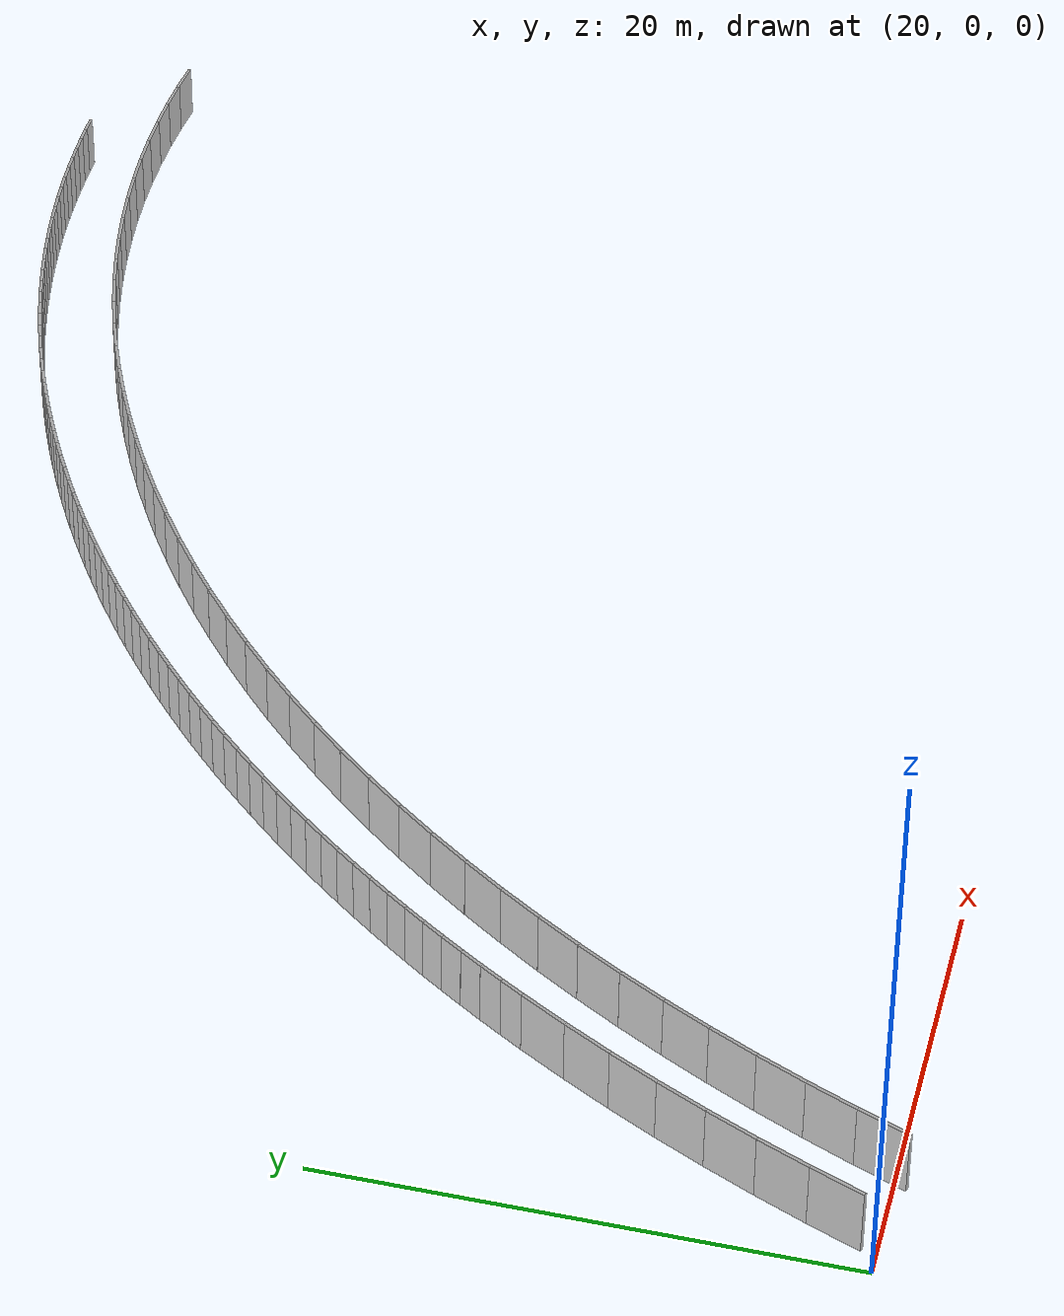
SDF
<sdf version="1.6">
 <model name="sps_0602">
  <static>1</static>
  <allow_auto_disable>0</allow_auto_disable>
  <link name="Wall1639">
   <collision name="collision"><geometry><box><size>2.22094 0.15 2.5</size></box></geometry></collision>
   <visual name="visual">
    <geometry><box><size>2.22094 0.15 2.5</size></box></geometry>
    <transparency>0.0</transparency>
   </visual>
   <pose>21.4795 1.55992 1.25 0 -0 1.16072</pose>
  </link>
  <link name="Wall1640">
   <collision name="collision"><geometry><box><size>2.22094 0.15 2.5</size></box></geometry></collision>
   <visual name="visual">
    <geometry><box><size>2.22094 0.15 2.5</size></box></geometry>
    <transparency>0.0</transparency>
   </visual>
   <pose>22.3906 3.58522 1.25 0 -0 1.13547</pose>
  </link>
  <link name="Wall1641">
   <collision name="collision"><geometry><box><size>2.22085 0.15 2.5</size></box></geometry></collision>
   <visual name="visual">
    <geometry><box><size>2.22085 0.15 2.5</size></box></geometry>
    <transparency>0.0</transparency>
   </visual>
   <pose>23.3524 5.58681 1.25 0 -0 1.11017</pose>
  </link>
  <link name="Wall1642">
   <collision name="collision"><geometry><box><size>2.2209 0.15 2.5</size></box></geometry></collision>
   <visual name="visual">
    <geometry><box><size>2.2209 0.15 2.5</size></box></geometry>
    <transparency>0.0</transparency>
   </visual>
   <pose>24.3646 7.5634 1.25 0 -0 1.08486</pose>
  </link>
  <link name="Wall1643">
   <collision name="collision"><geometry><box><size>2.22102 0.15 2.5</size></box></geometry></collision>
   <visual name="visual">
    <geometry><box><size>2.22102 0.15 2.5</size></box></geometry>
    <transparency>0.0</transparency>
   </visual>
   <pose>25.4264 9.5139 1.25 0 -0 1.0597</pose>
  </link>
  <link name="Wall1644">
   <collision name="collision"><geometry><box><size>2.22108 0.15 2.5</size></box></geometry></collision>
   <visual name="visual">
    <geometry><box><size>2.22108 0.15 2.5</size></box></geometry>
    <transparency>0.0</transparency>
   </visual>
   <pose>26.5371 11.4371 1.25 0 -0 1.03443</pose>
  </link>
  <link name="Wall1645">
   <collision name="collision"><geometry><box><size>2.22088 0.15 2.5</size></box></geometry></collision>
   <visual name="visual">
    <geometry><box><size>2.22088 0.15 2.5</size></box></geometry>
    <transparency>0.0</transparency>
   </visual>
   <pose>27.6959 13.3316 1.25 0 -0 1.00925</pose>
  </link>
  <link name="Wall1646">
   <collision name="collision"><geometry><box><size>1.11048 0.15 2.5</size></box></geometry></collision>
   <visual name="visual">
    <geometry><box><size>1.11048 0.15 2.5</size></box></geometry>
    <transparency>0.0</transparency>
   </visual>
   <pose>28.5918 14.7358 1.25 0 -0 0.990324</pose>
  </link>
  <link name="Wall1647">
   <collision name="collision"><geometry><box><size>1.11035 0.15 2.5</size></box></geometry></collision>
   <visual name="visual">
    <geometry><box><size>1.11035 0.15 2.5</size></box></geometry>
    <transparency>0.0</transparency>
   </visual>
   <pose>29.2067 15.6604 1.25 0 -0 0.977503</pose>
  </link>
  <link name="Wall1648">
   <collision name="collision"><geometry><box><size>1.11049 0.15 2.5</size></box></geometry></collision>
   <visual name="visual">
    <geometry><box><size>1.11049 0.15 2.5</size></box></geometry>
    <transparency>0.0</transparency>
   </visual>
   <pose>29.8332 16.5771 1.25 0 -0 0.964942</pose>
  </link>
  <link name="Wall1649">
   <collision name="collision"><geometry><box><size>1.1106 0.15 2.5</size></box></geometry></collision>
   <visual name="visual">
    <geometry><box><size>1.1106 0.15 2.5</size></box></geometry>
    <transparency>0.0</transparency>
   </visual>
   <pose>30.4715 17.4859 1.25 0 -0 0.952182</pose>
  </link>
  <link name="Wall1650">
   <collision name="collision"><geometry><box><size>1.11027 0.15 2.5</size></box></geometry></collision>
   <visual name="visual">
    <geometry><box><size>1.11027 0.15 2.5</size></box></geometry>
    <transparency>0.0</transparency>
   </visual>
   <pose>31.1211 18.3865 1.25 0 -0 0.939632</pose>
  </link>
  <link name="Wall1651">
   <collision name="collision"><geometry><box><size>1.11061 0.15 2.5</size></box></geometry></collision>
   <visual name="visual">
    <geometry><box><size>1.11061 0.15 2.5</size></box></geometry>
    <transparency>0.0</transparency>
   </visual>
   <pose>31.7819 19.2789 1.25 0 -0 0.927207</pose>
  </link>
  <link name="Wall1652">
   <collision name="collision"><geometry><box><size>1.11051 0.15 2.5</size></box></geometry></collision>
   <visual name="visual">
    <geometry><box><size>1.11051 0.15 2.5</size></box></geometry>
    <transparency>0.0</transparency>
   </visual>
   <pose>32.4538 20.1631 1.25 0 -0 0.914786</pose>
  </link>
  <link name="Wall1653">
   <collision name="collision"><geometry><box><size>1.11064 0.15 2.5</size></box></geometry></collision>
   <visual name="visual">
    <geometry><box><size>1.11064 0.15 2.5</size></box></geometry>
    <transparency>0.0</transparency>
   </visual>
   <pose>33.1369 21.0387 1.25 0 -0 0.901771</pose>
  </link>
  <link name="Wall1654">
   <collision name="collision"><geometry><box><size>1.11042 0.15 2.5</size></box></geometry></collision>
   <visual name="visual">
    <geometry><box><size>1.11042 0.15 2.5</size></box></geometry>
    <transparency>0.0</transparency>
   </visual>
   <pose>33.8312 21.9054 1.25 0 -0 0.889008</pose>
  </link>
  <link name="Wall1655">
   <collision name="collision"><geometry><box><size>1.11037 0.15 2.5</size></box></geometry></collision>
   <visual name="visual">
    <geometry><box><size>1.11037 0.15 2.5</size></box></geometry>
    <transparency>0.0</transparency>
   </visual>
   <pose>34.5362 22.7632 1.25 0 -0 0.876593</pose>
  </link>
  <link name="Wall1656">
   <collision name="collision"><geometry><box><size>1.11048 0.15 2.5</size></box></geometry></collision>
   <visual name="visual">
    <geometry><box><size>1.11048 0.15 2.5</size></box></geometry>
    <transparency>0.0</transparency>
   </visual>
   <pose>35.252 23.6121 1.25 0 -0 0.863947</pose>
  </link>
  <link name="Wall1657">
   <collision name="collision"><geometry><box><size>1.11047 0.15 2.5</size></box></geometry></collision>
   <visual name="visual">
    <geometry><box><size>1.11047 0.15 2.5</size></box></geometry>
    <transparency>0.0</transparency>
   </visual>
   <pose>35.9784 24.452 1.25 0 -0 0.851516</pose>
  </link>
  <link name="Wall1658">
   <collision name="collision"><geometry><box><size>1.11046 0.15 2.5</size></box></geometry></collision>
   <visual name="visual">
    <geometry><box><size>1.11046 0.15 2.5</size></box></geometry>
    <transparency>0.0</transparency>
   </visual>
   <pose>36.7153 25.2828 1.25 0 -0 0.839019</pose>
  </link>
  <link name="Wall1659">
   <collision name="collision"><geometry><box><size>1.11065 0.15 2.5</size></box></geometry></collision>
   <visual name="visual">
    <geometry><box><size>1.11065 0.15 2.5</size></box></geometry>
    <transparency>0.0</transparency>
   </visual>
   <pose>37.4627 26.1042 1.25 0 -0 0.826017</pose>
  </link>
  <link name="Wall1660">
   <collision name="collision"><geometry><box><size>1.11047 0.15 2.5</size></box></geometry></collision>
   <visual name="visual">
    <geometry><box><size>1.11047 0.15 2.5</size></box></geometry>
    <transparency>0.0</transparency>
   </visual>
   <pose>38.2206 26.9159 1.25 0 -0 0.813307</pose>
  </link>
  <link name="Wall1661">
   <collision name="collision"><geometry><box><size>1.11042 0.15 2.5</size></box></geometry></collision>
   <visual name="visual">
    <geometry><box><size>1.11042 0.15 2.5</size></box></geometry>
    <transparency>0.0</transparency>
   </visual>
   <pose>38.9886 27.7179 1.25 0 -0 0.80079</pose>
  </link>
  <link name="Wall1662">
   <collision name="collision"><geometry><box><size>1.11043 0.15 2.5</size></box></geometry></collision>
   <visual name="visual">
    <geometry><box><size>1.11043 0.15 2.5</size></box></geometry>
    <transparency>0.0</transparency>
   </visual>
   <pose>39.7666 28.5102 1.25 0 -0 0.788235</pose>
  </link>
  <link name="Wall1663">
   <collision name="collision"><geometry><box><size>1.11052 0.15 2.5</size></box></geometry></collision>
   <visual name="visual">
    <geometry><box><size>1.11052 0.15 2.5</size></box></geometry>
    <transparency>0.0</transparency>
   </visual>
   <pose>40.5546 29.2926 1.25 0 -0 0.775449</pose>
  </link>
  <link name="Wall1664">
   <collision name="collision"><geometry><box><size>1.11039 0.15 2.5</size></box></geometry></collision>
   <visual name="visual">
    <geometry><box><size>1.11039 0.15 2.5</size></box></geometry>
    <transparency>0.0</transparency>
   </visual>
   <pose>41.3523 30.0651 1.25 0 -0 0.763242</pose>
  </link>
  <link name="Wall1665">
   <collision name="collision"><geometry><box><size>1.11041 0.15 2.5</size></box></geometry></collision>
   <visual name="visual">
    <geometry><box><size>1.11041 0.15 2.5</size></box></geometry>
    <transparency>0.0</transparency>
   </visual>
   <pose>42.1595 30.8275 1.25 0 -0 0.750372</pose>
  </link>
  <link name="Wall1666">
   <collision name="collision"><geometry><box><size>1.11074 0.15 2.5</size></box></geometry></collision>
   <visual name="visual">
    <geometry><box><size>1.11074 0.15 2.5</size></box></geometry>
    <transparency>0.0</transparency>
   </visual>
   <pose>42.9766 31.5796 1.25 0 -0 0.737627</pose>
  </link>
  <link name="Wall1667">
   <collision name="collision"><geometry><box><size>1.11034 0.15 2.5</size></box></geometry></collision>
   <visual name="visual">
    <geometry><box><size>1.11034 0.15 2.5</size></box></geometry>
    <transparency>0.0</transparency>
   </visual>
   <pose>43.8032 32.3212 1.25 0 -0 0.72488</pose>
  </link>
  <link name="Wall1668">
   <collision name="collision"><geometry><box><size>1.11057 0.15 2.5</size></box></geometry></collision>
   <visual name="visual">
    <geometry><box><size>1.11057 0.15 2.5</size></box></geometry>
    <transparency>0.0</transparency>
   </visual>
   <pose>44.639 33.0523 1.25 0 -0 0.712507</pose>
  </link>
  <link name="Wall1669">
   <collision name="collision"><geometry><box><size>1.11055 0.15 2.5</size></box></geometry></collision>
   <visual name="visual">
    <geometry><box><size>1.11055 0.15 2.5</size></box></geometry>
    <transparency>0.0</transparency>
   </visual>
   <pose>45.4839 33.773 1.25 0 -0 0.699953</pose>
  </link>
  <link name="Wall1670">
   <collision name="collision"><geometry><box><size>1.1104 0.15 2.5</size></box></geometry></collision>
   <visual name="visual">
    <geometry><box><size>1.1104 0.15 2.5</size></box></geometry>
    <transparency>0.0</transparency>
   </visual>
   <pose>46.3378 34.483 1.25 0 -0 0.687412</pose>
  </link>
  <link name="Wall1671">
   <collision name="collision"><geometry><box><size>1.11045 0.15 2.5</size></box></geometry></collision>
   <visual name="visual">
    <geometry><box><size>1.11045 0.15 2.5</size></box></geometry>
    <transparency>0.0</transparency>
   </visual>
   <pose>47.2005 35.1821 1.25 0 -0 0.674638</pose>
  </link>
  <link name="Wall1672">
   <collision name="collision"><geometry><box><size>1.11043 0.15 2.5</size></box></geometry></collision>
   <visual name="visual">
    <geometry><box><size>1.11043 0.15 2.5</size></box></geometry>
    <transparency>0.0</transparency>
   </visual>
   <pose>48.072 35.8701 1.25 0 -0 0.661839</pose>
  </link>
  <link name="Wall1673">
   <collision name="collision"><geometry><box><size>1.11056 0.15 2.5</size></box></geometry></collision>
   <visual name="visual">
    <geometry><box><size>1.11056 0.15 2.5</size></box></geometry>
    <transparency>0.0</transparency>
   </visual>
   <pose>48.9524 36.547 1.25 0 -0 0.649195</pose>
  </link>
  <link name="Wall1674">
   <collision name="collision"><geometry><box><size>1.11036 0.15 2.5</size></box></geometry></collision>
   <visual name="visual">
    <geometry><box><size>1.11036 0.15 2.5</size></box></geometry>
    <transparency>0.0</transparency>
   </visual>
   <pose>49.8411 37.2128 1.25 0 -0 0.636762</pose>
  </link>
  <link name="Wall1675">
   <collision name="collision"><geometry><box><size>1.1106 0.15 2.5</size></box></geometry></collision>
   <visual name="visual">
    <geometry><box><size>1.1106 0.15 2.5</size></box></geometry>
    <transparency>0.0</transparency>
   </visual>
   <pose>50.7381 37.8674 1.25 0 -0 0.624089</pose>
  </link>
  <link name="Wall1676">
   <collision name="collision"><geometry><box><size>1.11045 0.15 2.5</size></box></geometry></collision>
   <visual name="visual">
    <geometry><box><size>1.11045 0.15 2.5</size></box></geometry>
    <transparency>0.0</transparency>
   </visual>
   <pose>51.6433 38.5107 1.25 0 -0 0.611572</pose>
  </link>
  <link name="Wall1677">
   <collision name="collision"><geometry><box><size>1.11047 0.15 2.5</size></box></geometry></collision>
   <visual name="visual">
    <geometry><box><size>1.11047 0.15 2.5</size></box></geometry>
    <transparency>0.0</transparency>
   </visual>
   <pose>52.5564 39.1425 1.25 0 -0 0.598933</pose>
  </link>
  <link name="Wall1678">
   <collision name="collision"><geometry><box><size>1.11055 0.15 2.5</size></box></geometry></collision>
   <visual name="visual">
    <geometry><box><size>1.11055 0.15 2.5</size></box></geometry>
    <transparency>0.0</transparency>
   </visual>
   <pose>53.4777 39.7625 1.25 0 -0 0.585762</pose>
  </link>
  <link name="Wall1679">
   <collision name="collision"><geometry><box><size>1.11051 0.15 2.5</size></box></geometry></collision>
   <visual name="visual">
    <geometry><box><size>1.11051 0.15 2.5</size></box></geometry>
    <transparency>0.0</transparency>
   </visual>
   <pose>54.4069 40.3708 1.25 0 -0 0.573567</pose>
  </link>
  <link name="Wall1680">
   <collision name="collision"><geometry><box><size>1.11041 0.15 2.5</size></box></geometry></collision>
   <visual name="visual">
    <geometry><box><size>1.11041 0.15 2.5</size></box></geometry>
    <transparency>0.0</transparency>
   </visual>
   <pose>55.3433 40.9675 1.25 0 -0 0.561046</pose>
  </link>
  <link name="Wall1681">
   <collision name="collision"><geometry><box><size>1.11051 0.15 2.5</size></box></geometry></collision>
   <visual name="visual">
    <geometry><box><size>1.11051 0.15 2.5</size></box></geometry>
    <transparency>0.0</transparency>
   </visual>
   <pose>56.2873 41.5524 1.25 0 -0 0.54845</pose>
  </link>
  <link name="Wall1682">
   <collision name="collision"><geometry><box><size>1.11061 0.15 2.5</size></box></geometry></collision>
   <visual name="visual">
    <geometry><box><size>1.11061 0.15 2.5</size></box></geometry>
    <transparency>0.0</transparency>
   </visual>
   <pose>57.2385 42.1254 1.25 0 -0 0.53582</pose>
  </link>
  <link name="Wall1683">
   <collision name="collision"><geometry><box><size>1.11046 0.15 2.5</size></box></geometry></collision>
   <visual name="visual">
    <geometry><box><size>1.11046 0.15 2.5</size></box></geometry>
    <transparency>0.0</transparency>
   </visual>
   <pose>58.197 42.6862 1.25 0 -0 0.522971</pose>
  </link>
  <link name="Wall1684">
   <collision name="collision"><geometry><box><size>1.11045 0.15 2.5</size></box></geometry></collision>
   <visual name="visual">
    <geometry><box><size>1.11045 0.15 2.5</size></box></geometry>
    <transparency>0.0</transparency>
   </visual>
   <pose>59.1626 43.2347 1.25 0 -0 0.51027</pose>
  </link>
  <link name="Wall1685">
   <collision name="collision"><geometry><box><size>1.11057 0.15 2.5</size></box></geometry></collision>
   <visual name="visual">
    <geometry><box><size>1.11057 0.15 2.5</size></box></geometry>
    <transparency>0.0</transparency>
   </visual>
   <pose>60.135 43.771 1.25 0 -0 0.497719</pose>
  </link>
  <link name="Wall1686">
   <collision name="collision"><geometry><box><size>1.11032 0.15 2.5</size></box></geometry></collision>
   <visual name="visual">
    <geometry><box><size>1.11032 0.15 2.5</size></box></geometry>
    <transparency>0.0</transparency>
   </visual>
   <pose>61.114 44.295 1.25 0 -0 0.485185</pose>
  </link>
  <link name="Wall1687">
   <collision name="collision"><geometry><box><size>1.11052 0.15 2.5</size></box></geometry></collision>
   <visual name="visual">
    <geometry><box><size>1.11052 0.15 2.5</size></box></geometry>
    <transparency>0.0</transparency>
   </visual>
   <pose>62.0994 44.8067 1.25 0 -0 0.472644</pose>
  </link>
  <link name="Wall1688">
   <collision name="collision"><geometry><box><size>1.11045 0.15 2.5</size></box></geometry></collision>
   <visual name="visual">
    <geometry><box><size>1.11045 0.15 2.5</size></box></geometry>
    <transparency>0.0</transparency>
   </visual>
   <pose>63.0913 45.306 1.25 0 -0 0.460059</pose>
  </link>
  <link name="Wall1689">
   <collision name="collision"><geometry><box><size>1.11051 0.15 2.5</size></box></geometry></collision>
   <visual name="visual">
    <geometry><box><size>1.11051 0.15 2.5</size></box></geometry>
    <transparency>0.0</transparency>
   </visual>
   <pose>64.0894 45.7927 1.25 0 -0 0.447375</pose>
  </link>
  <link name="Wall1690">
   <collision name="collision"><geometry><box><size>1.11062 0.15 2.5</size></box></geometry></collision>
   <visual name="visual">
    <geometry><box><size>1.11062 0.15 2.5</size></box></geometry>
    <transparency>0.0</transparency>
   </visual>
   <pose>65.0937 46.2667 1.25 0 -0 0.434569</pose>
  </link>
  <link name="Wall1691">
   <collision name="collision"><geometry><box><size>1.1104 0.15 2.5</size></box></geometry></collision>
   <visual name="visual">
    <geometry><box><size>1.1104 0.15 2.5</size></box></geometry>
    <transparency>0.0</transparency>
   </visual>
   <pose>66.1039 46.7279 1.25 0 -0 0.421969</pose>
  </link>
  <link name="Wall1692">
   <collision name="collision"><geometry><box><size>1.11055 0.15 2.5</size></box></geometry></collision>
   <visual name="visual">
    <geometry><box><size>1.11055 0.15 2.5</size></box></geometry>
    <transparency>0.0</transparency>
   </visual>
   <pose>67.1198 47.1763 1.25 0 -0 0.409352</pose>
  </link>
  <link name="Wall1693">
   <collision name="collision"><geometry><box><size>1.11035 0.15 2.5</size></box></geometry></collision>
   <visual name="visual">
    <geometry><box><size>1.11035 0.15 2.5</size></box></geometry>
    <transparency>0.0</transparency>
   </visual>
   <pose>68.1413 47.6119 1.25 0 -0 0.39688</pose>
  </link>
  <link name="Wall1694">
   <collision name="collision"><geometry><box><size>1.11038 0.15 2.5</size></box></geometry></collision>
   <visual name="visual">
    <geometry><box><size>1.11038 0.15 2.5</size></box></geometry>
    <transparency>0.0</transparency>
   </visual>
   <pose>69.168 48.0347 1.25 0 -0 0.384385</pose>
  </link>
  <link name="Wall1695">
   <collision name="collision"><geometry><box><size>1.11057 0.15 2.5</size></box></geometry></collision>
   <visual name="visual">
    <geometry><box><size>1.11057 0.15 2.5</size></box></geometry>
    <transparency>0.0</transparency>
   </visual>
   <pose>70.2 48.4445 1.25 0 -0 0.371546</pose>
  </link>
  <link name="Wall1696">
   <collision name="collision"><geometry><box><size>1.11036 0.15 2.5</size></box></geometry></collision>
   <visual name="visual">
    <geometry><box><size>1.11036 0.15 2.5</size></box></geometry>
    <transparency>0.0</transparency>
   </visual>
   <pose>71.2372 48.8411 1.25 0 -0 0.358906</pose>
  </link>
  <link name="Wall1697">
   <collision name="collision"><geometry><box><size>1.11068 0.15 2.5</size></box></geometry></collision>
   <visual name="visual">
    <geometry><box><size>1.11068 0.15 2.5</size></box></geometry>
    <transparency>0.0</transparency>
   </visual>
   <pose>72.2794 49.2245 1.25 0 -0 0.346151</pose>
  </link>
  <link name="Wall1698">
   <collision name="collision"><geometry><box><size>1.11041 0.15 2.5</size></box></geometry></collision>
   <visual name="visual">
    <geometry><box><size>1.11041 0.15 2.5</size></box></geometry>
    <transparency>0.0</transparency>
   </visual>
   <pose>73.3264 49.5947 1.25 0 -0 0.333588</pose>
  </link>
  <link name="Wall1699">
   <collision name="collision"><geometry><box><size>1.11062 0.15 2.5</size></box></geometry></collision>
   <visual name="visual">
    <geometry><box><size>1.11062 0.15 2.5</size></box></geometry>
    <transparency>0.0</transparency>
   </visual>
   <pose>74.378 49.9518 1.25 0 -0 0.32116</pose>
  </link>
  <link name="Wall1700">
   <collision name="collision"><geometry><box><size>1.11043 0.15 2.5</size></box></geometry></collision>
   <visual name="visual">
    <geometry><box><size>1.11043 0.15 2.5</size></box></geometry>
    <transparency>0.0</transparency>
   </visual>
   <pose>75.4339 50.2957 1.25 0 -0 0.308558</pose>
  </link>
  <link name="Wall1701">
   <collision name="collision"><geometry><box><size>1.11057 0.15 2.5</size></box></geometry></collision>
   <visual name="visual">
    <geometry><box><size>1.11057 0.15 2.5</size></box></geometry>
    <transparency>0.0</transparency>
   </visual>
   <pose>76.494 50.6261 1.25 0 -0 0.295679</pose>
  </link>
  <link name="Wall1702">
   <collision name="collision"><geometry><box><size>1.11043 0.15 2.5</size></box></geometry></collision>
   <visual name="visual">
    <geometry><box><size>1.11043 0.15 2.5</size></box></geometry>
    <transparency>0.0</transparency>
   </visual>
   <pose>77.5583 50.943 1.25 0 -0 0.283102</pose>
  </link>
  <link name="Wall1703">
   <collision name="collision"><geometry><box><size>1.11052 0.15 2.5</size></box></geometry></collision>
   <visual name="visual">
    <geometry><box><size>1.11052 0.15 2.5</size></box></geometry>
    <transparency>0.0</transparency>
   </visual>
   <pose>78.6265 51.2464 1.25 0 -0 0.270335</pose>
  </link>
  <link name="Wall1704">
   <collision name="collision"><geometry><box><size>1.1104 0.15 2.5</size></box></geometry></collision>
   <visual name="visual">
    <geometry><box><size>1.1104 0.15 2.5</size></box></geometry>
    <transparency>0.0</transparency>
   </visual>
   <pose>79.6984 51.5364 1.25 0 -0 0.258124</pose>
  </link>
  <link name="Wall1705">
   <collision name="collision"><geometry><box><size>1.11048 0.15 2.5</size></box></geometry></collision>
   <visual name="visual">
    <geometry><box><size>1.11048 0.15 2.5</size></box></geometry>
    <transparency>0.0</transparency>
   </visual>
   <pose>80.7739 51.813 1.25 0 -0 0.245392</pose>
  </link>
  <link name="Wall1706">
   <collision name="collision"><geometry><box><size>1.11053 0.15 2.5</size></box></geometry></collision>
   <visual name="visual">
    <geometry><box><size>1.11053 0.15 2.5</size></box></geometry>
    <transparency>0.0</transparency>
   </visual>
   <pose>81.8527 52.076 1.25 0 -0 0.232822</pose>
  </link>
  <link name="Wall1707">
   <collision name="collision"><geometry><box><size>1.11057 0.15 2.5</size></box></geometry></collision>
   <visual name="visual">
    <geometry><box><size>1.11057 0.15 2.5</size></box></geometry>
    <transparency>0.0</transparency>
   </visual>
   <pose>82.9349 52.3253 1.25 0 -0 0.22001</pose>
  </link>
  <link name="Wall1708">
   <collision name="collision"><geometry><box><size>1.11039 0.15 2.5</size></box></geometry></collision>
   <visual name="visual">
    <geometry><box><size>1.11039 0.15 2.5</size></box></geometry>
    <transparency>0.0</transparency>
   </visual>
   <pose>84.0201 52.5608 1.25 0 -0 0.207335</pose>
  </link>
  <link name="Wall1709">
   <collision name="collision"><geometry><box><size>1.1104 0.15 2.5</size></box></geometry></collision>
   <visual name="visual">
    <geometry><box><size>1.1104 0.15 2.5</size></box></geometry>
    <transparency>0.0</transparency>
   </visual>
   <pose>85.1081 52.7825 1.25 0 -0 0.194711</pose>
  </link>
  <link name="Wall1710">
   <collision name="collision"><geometry><box><size>1.1106 0.15 2.5</size></box></geometry></collision>
   <visual name="visual">
    <geometry><box><size>1.1106 0.15 2.5</size></box></geometry>
    <transparency>0.0</transparency>
   </visual>
   <pose>86.199 52.9905 1.25 0 -0 0.182144</pose>
  </link>
  <link name="Wall1711">
   <collision name="collision"><geometry><box><size>1.1103 0.15 2.5</size></box></geometry></collision>
   <visual name="visual">
    <geometry><box><size>1.1103 0.15 2.5</size></box></geometry>
    <transparency>0.0</transparency>
   </visual>
   <pose>87.2923 53.1848 1.25 0 -0 0.169631</pose>
  </link>
  <link name="Wall1712">
   <collision name="collision"><geometry><box><size>1.11072 0.15 2.5</size></box></geometry></collision>
   <visual name="visual">
    <geometry><box><size>1.11072 0.15 2.5</size></box></geometry>
    <transparency>0.0</transparency>
   </visual>
   <pose>88.388 53.3654 1.25 0 -0 0.15709</pose>
  </link>
  <link name="Wall1713">
   <collision name="collision"><geometry><box><size>1.11053 0.15 2.5</size></box></geometry></collision>
   <visual name="visual">
    <geometry><box><size>1.11053 0.15 2.5</size></box></geometry>
    <transparency>0.0</transparency>
   </visual>
   <pose>89.486 53.5321 1.25 0 -0 0.144221</pose>
  </link>
  <link name="Wall1714">
   <collision name="collision"><geometry><box><size>1.11054 0.15 2.5</size></box></geometry></collision>
   <visual name="visual">
    <geometry><box><size>1.11054 0.15 2.5</size></box></geometry>
    <transparency>0.0</transparency>
   </visual>
   <pose>90.586 53.6847 1.25 0 -0 0.131513</pose>
  </link>
  <link name="Wall1715">
   <collision name="collision"><geometry><box><size>1.11042 0.15 2.5</size></box></geometry></collision>
   <visual name="visual">
    <geometry><box><size>1.11042 0.15 2.5</size></box></geometry>
    <transparency>0.0</transparency>
   </visual>
   <pose>91.6877 53.8233 1.25 0 -0 0.118785</pose>
  </link>
  <link name="Wall1753">
   <collision name="collision"><geometry><box><size>2.18192 0.15 2.5</size></box></geometry></collision>
   <visual name="visual">
    <geometry><box><size>2.18192 0.15 2.5</size></box></geometry>
    <transparency>0.0</transparency>
   </visual>
   <pose>98.3574 50.8558 1.25 0 0 -3.09693</pose>
  </link>
  <link name="Wall1754">
   <collision name="collision"><geometry><box><size>2.18188 0.15 2.5</size></box></geometry></collision>
   <visual name="visual">
    <geometry><box><size>2.18188 0.15 2.5</size></box></geometry>
    <transparency>0.0</transparency>
   </visual>
   <pose>96.1793 50.7302 1.25 0 0 -3.07104</pose>
  </link>
  <link name="Wall1755">
   <collision name="collision"><geometry><box><size>2.18212 0.15 2.5</size></box></geometry></collision>
   <visual name="visual">
    <geometry><box><size>2.18212 0.15 2.5</size></box></geometry>
    <transparency>0.0</transparency>
   </visual>
   <pose>94.005 50.5483 1.25 0 0 -3.04522</pose>
  </link>
  <link name="Wall1756">
   <collision name="collision"><geometry><box><size>2.18186 0.15 2.5</size></box></geometry></collision>
   <visual name="visual">
    <geometry><box><size>2.18186 0.15 2.5</size></box></geometry>
    <transparency>0.0</transparency>
   </visual>
   <pose>91.8362 50.3103 1.25 0 0 -3.01938</pose>
  </link>
  <link name="Wall1757">
   <collision name="collision"><geometry><box><size>2.18185 0.15 2.5</size></box></geometry></collision>
   <visual name="visual">
    <geometry><box><size>2.18185 0.15 2.5</size></box></geometry>
    <transparency>0.0</transparency>
   </visual>
   <pose>89.6745 50.0163 1.25 0 0 -2.99346</pose>
  </link>
  <link name="Wall1758">
   <collision name="collision"><geometry><box><size>2.18197 0.15 2.5</size></box></geometry></collision>
   <visual name="visual">
    <geometry><box><size>2.18197 0.15 2.5</size></box></geometry>
    <transparency>0.0</transparency>
   </visual>
   <pose>87.521 49.6665 1.25 0 0 -2.96765</pose>
  </link>
  <link name="Wall1759">
   <collision name="collision"><geometry><box><size>2.18191 0.15 2.5</size></box></geometry></collision>
   <visual name="visual">
    <geometry><box><size>2.18191 0.15 2.5</size></box></geometry>
    <transparency>0.0</transparency>
   </visual>
   <pose>85.3772 49.2613 1.25 0 0 -2.94191</pose>
  </link>
  <link name="Wall1760">
   <collision name="collision"><geometry><box><size>2.18191 0.15 2.5</size></box></geometry></collision>
   <visual name="visual">
    <geometry><box><size>2.18191 0.15 2.5</size></box></geometry>
    <transparency>0.0</transparency>
   </visual>
   <pose>83.2446 48.8009 1.25 0 0 -2.91604</pose>
  </link>
  <link name="Wall1761">
   <collision name="collision"><geometry><box><size>2.18199 0.15 2.5</size></box></geometry></collision>
   <visual name="visual">
    <geometry><box><size>2.18199 0.15 2.5</size></box></geometry>
    <transparency>0.0</transparency>
   </visual>
   <pose>81.1245 48.2855 1.25 0 0 -2.8902</pose>
  </link>
  <link name="Wall1762">
   <collision name="collision"><geometry><box><size>2.18208 0.15 2.5</size></box></geometry></collision>
   <visual name="visual">
    <geometry><box><size>2.18208 0.15 2.5</size></box></geometry>
    <transparency>0.0</transparency>
   </visual>
   <pose>79.0185 47.7155 1.25 0 0 -2.86436</pose>
  </link>
  <link name="Wall1763">
   <collision name="collision"><geometry><box><size>2.18184 0.15 2.5</size></box></geometry></collision>
   <visual name="visual">
    <geometry><box><size>2.18184 0.15 2.5</size></box></geometry>
    <transparency>0.0</transparency>
   </visual>
   <pose>76.9279 47.0913 1.25 0 0 -2.83852</pose>
  </link>
  <link name="Wall1764">
   <collision name="collision"><geometry><box><size>2.1818 0.15 2.5</size></box></geometry></collision>
   <visual name="visual">
    <geometry><box><size>2.1818 0.15 2.5</size></box></geometry>
    <transparency>0.0</transparency>
   </visual>
   <pose>74.8543 46.4133 1.25 0 0 -2.81264</pose>
  </link>
  <link name="Wall1765">
   <collision name="collision"><geometry><box><size>2.18192 0.15 2.5</size></box></geometry></collision>
   <visual name="visual">
    <geometry><box><size>2.18192 0.15 2.5</size></box></geometry>
    <transparency>0.0</transparency>
   </visual>
   <pose>72.7989 45.6819 1.25 0 0 -2.7868</pose>
  </link>
  <link name="Wall1766">
   <collision name="collision"><geometry><box><size>2.18215 0.15 2.5</size></box></geometry></collision>
   <visual name="visual">
    <geometry><box><size>2.18215 0.15 2.5</size></box></geometry>
    <transparency>0.0</transparency>
   </visual>
   <pose>70.7628 44.8976 1.25 0 0 -2.761</pose>
  </link>
  <link name="Wall1767">
   <collision name="collision"><geometry><box><size>2.18164 0.15 2.5</size></box></geometry></collision>
   <visual name="visual">
    <geometry><box><size>2.18164 0.15 2.5</size></box></geometry>
    <transparency>0.0</transparency>
   </visual>
   <pose>68.7479 44.0611 1.25 0 0 -2.73522</pose>
  </link>
  <link name="Wall1768">
   <collision name="collision"><geometry><box><size>2.18187 0.15 2.5</size></box></geometry></collision>
   <visual name="visual">
    <geometry><box><size>2.18187 0.15 2.5</size></box></geometry>
    <transparency>0.0</transparency>
   </visual>
   <pose>66.7553 43.1729 1.25 0 0 -2.70935</pose>
  </link>
  <link name="Wall1769">
   <collision name="collision"><geometry><box><size>2.18203 0.15 2.5</size></box></geometry></collision>
   <visual name="visual">
    <geometry><box><size>2.18203 0.15 2.5</size></box></geometry>
    <transparency>0.0</transparency>
   </visual>
   <pose>64.7862 42.2334 1.25 0 0 -2.68347</pose>
  </link>
  <link name="Wall1770">
   <collision name="collision"><geometry><box><size>2.18195 0.15 2.5</size></box></geometry></collision>
   <visual name="visual">
    <geometry><box><size>2.18195 0.15 2.5</size></box></geometry>
    <transparency>0.0</transparency>
   </visual>
   <pose>62.8419 41.2433 1.25 0 0 -2.65765</pose>
  </link>
  <link name="Wall1771">
   <collision name="collision"><geometry><box><size>2.18214 0.15 2.5</size></box></geometry></collision>
   <visual name="visual">
    <geometry><box><size>2.18214 0.15 2.5</size></box></geometry>
    <transparency>0.0</transparency>
   </visual>
   <pose>60.9239 40.2032 1.25 0 0 -2.63173</pose>
  </link>
  <link name="Wall1772">
   <collision name="collision"><geometry><box><size>2.18196 0.15 2.5</size></box></geometry></collision>
   <visual name="visual">
    <geometry><box><size>2.18196 0.15 2.5</size></box></geometry>
    <transparency>0.0</transparency>
   </visual>
   <pose>59.0334 39.1139 1.25 0 0 -2.60599</pose>
  </link>
  <link name="Wall1773">
   <collision name="collision"><geometry><box><size>2.18187 0.15 2.5</size></box></geometry></collision>
   <visual name="visual">
    <geometry><box><size>2.18187 0.15 2.5</size></box></geometry>
    <transparency>0.0</transparency>
   </visual>
   <pose>57.1717 37.9763 1.25 0 0 -2.5802</pose>
  </link>
  <link name="Wall1774">
   <collision name="collision"><geometry><box><size>2.18185 0.15 2.5</size></box></geometry></collision>
   <visual name="visual">
    <geometry><box><size>2.18185 0.15 2.5</size></box></geometry>
    <transparency>0.0</transparency>
   </visual>
   <pose>55.3401 36.791 1.25 0 0 -2.55427</pose>
  </link>
  <link name="Wall1775">
   <collision name="collision"><geometry><box><size>2.18198 0.15 2.5</size></box></geometry></collision>
   <visual name="visual">
    <geometry><box><size>2.18198 0.15 2.5</size></box></geometry>
    <transparency>0.0</transparency>
   </visual>
   <pose>53.5398 35.5587 1.25 0 0 -2.52847</pose>
  </link>
  <link name="Wall1776">
   <collision name="collision"><geometry><box><size>2.18187 0.15 2.5</size></box></geometry></collision>
   <visual name="visual">
    <geometry><box><size>2.18187 0.15 2.5</size></box></geometry>
    <transparency>0.0</transparency>
   </visual>
   <pose>51.7718 34.2803 1.25 0 0 -2.50262</pose>
  </link>
  <link name="Wall1777">
   <collision name="collision"><geometry><box><size>2.18188 0.15 2.5</size></box></geometry></collision>
   <visual name="visual">
    <geometry><box><size>2.18188 0.15 2.5</size></box></geometry>
    <transparency>0.0</transparency>
   </visual>
   <pose>50.0375 32.9567 1.25 0 0 -2.47679</pose>
  </link>
  <link name="Wall1778">
   <collision name="collision"><geometry><box><size>2.18204 0.15 2.5</size></box></geometry></collision>
   <visual name="visual">
    <geometry><box><size>2.18204 0.15 2.5</size></box></geometry>
    <transparency>0.0</transparency>
   </visual>
   <pose>48.3379 31.5887 1.25 0 0 -2.45096</pose>
  </link>
  <link name="Wall1779">
   <collision name="collision"><geometry><box><size>2.18191 0.15 2.5</size></box></geometry></collision>
   <visual name="visual">
    <geometry><box><size>2.18191 0.15 2.5</size></box></geometry>
    <transparency>0.0</transparency>
   </visual>
   <pose>46.6742 30.1772 1.25 0 0 -2.42508</pose>
  </link>
  <link name="Wall1780">
   <collision name="collision"><geometry><box><size>2.18191 0.15 2.5</size></box></geometry></collision>
   <visual name="visual">
    <geometry><box><size>2.18191 0.15 2.5</size></box></geometry>
    <transparency>0.0</transparency>
   </visual>
   <pose>45.0476 28.7232 1.25 0 0 -2.39923</pose>
  </link>
  <link name="Wall1781">
   <collision name="collision"><geometry><box><size>2.18189 0.15 2.5</size></box></geometry></collision>
   <visual name="visual">
    <geometry><box><size>2.18189 0.15 2.5</size></box></geometry>
    <transparency>0.0</transparency>
   </visual>
   <pose>43.4591 27.2277 1.25 0 0 -2.37344</pose>
  </link>
  <link name="Wall1782">
   <collision name="collision"><geometry><box><size>2.18191 0.15 2.5</size></box></geometry></collision>
   <visual name="visual">
    <geometry><box><size>2.18191 0.15 2.5</size></box></geometry>
    <transparency>0.0</transparency>
   </visual>
   <pose>41.9097 25.6917 1.25 0 0 -2.34765</pose>
  </link>
  <link name="Wall1783">
   <collision name="collision"><geometry><box><size>2.18191 0.15 2.5</size></box></geometry></collision>
   <visual name="visual">
    <geometry><box><size>2.18191 0.15 2.5</size></box></geometry>
    <transparency>0.0</transparency>
   </visual>
   <pose>40.4004 24.1162 1.25 0 0 -2.32177</pose>
  </link>
  <link name="Wall1784">
   <collision name="collision"><geometry><box><size>2.18195 0.15 2.5</size></box></geometry></collision>
   <visual name="visual">
    <geometry><box><size>2.18195 0.15 2.5</size></box></geometry>
    <transparency>0.0</transparency>
   </visual>
   <pose>38.9325 22.5022 1.25 0 0 -2.29593</pose>
  </link>
  <link name="Wall1785">
   <collision name="collision"><geometry><box><size>2.18189 0.15 2.5</size></box></geometry></collision>
   <visual name="visual">
    <geometry><box><size>2.18189 0.15 2.5</size></box></geometry>
    <transparency>0.0</transparency>
   </visual>
   <pose>37.5067 20.8508 1.25 0 0 -2.27008</pose>
  </link>
  <link name="Wall1786">
   <collision name="collision"><geometry><box><size>2.18213 0.15 2.5</size></box></geometry></collision>
   <visual name="visual">
    <geometry><box><size>2.18213 0.15 2.5</size></box></geometry>
    <transparency>0.0</transparency>
   </visual>
   <pose>36.124 19.163 1.25 0 0 -2.24417</pose>
  </link>
  <link name="Wall1787">
   <collision name="collision"><geometry><box><size>2.18182 0.15 2.5</size></box></geometry></collision>
   <visual name="visual">
    <geometry><box><size>2.18182 0.15 2.5</size></box></geometry>
    <transparency>0.0</transparency>
   </visual>
   <pose>34.7855 17.4401 1.25 0 0 -2.21846</pose>
  </link>
  <link name="Wall1788">
   <collision name="collision"><geometry><box><size>2.18196 0.15 2.5</size></box></geometry></collision>
   <visual name="visual">
    <geometry><box><size>2.18196 0.15 2.5</size></box></geometry>
    <transparency>0.0</transparency>
   </visual>
   <pose>33.4918 15.6833 1.25 0 0 -2.1926</pose>
  </link>
  <link name="Wall1789">
   <collision name="collision"><geometry><box><size>2.18191 0.15 2.5</size></box></geometry></collision>
   <visual name="visual">
    <geometry><box><size>2.18191 0.15 2.5</size></box></geometry>
    <transparency>0.0</transparency>
   </visual>
   <pose>32.244 13.8936 1.25 0 0 -2.1667</pose>
  </link>
  <link name="Wall1790">
   <collision name="collision"><geometry><box><size>2.18187 0.15 2.5</size></box></geometry></collision>
   <visual name="visual">
    <geometry><box><size>2.18187 0.15 2.5</size></box></geometry>
    <transparency>0.0</transparency>
   </visual>
   <pose>31.0429 12.0723 1.25 0 0 -2.14091</pose>
  </link>
  <link name="Wall1791">
   <collision name="collision"><geometry><box><size>2.18188 0.15 2.5</size></box></geometry></collision>
   <visual name="visual">
    <geometry><box><size>2.18188 0.15 2.5</size></box></geometry>
    <transparency>0.0</transparency>
   </visual>
   <pose>29.8892 10.2206 1.25 0 0 -2.1151</pose>
  </link>
  <link name="Wall1792">
   <collision name="collision"><geometry><box><size>2.18182 0.15 2.5</size></box></geometry></collision>
   <visual name="visual">
    <geometry><box><size>2.18182 0.15 2.5</size></box></geometry>
    <transparency>0.0</transparency>
   </visual>
   <pose>28.7837 8.33971 1.25 0 0 -2.08915</pose>
  </link>
  <link name="Wall1793">
   <collision name="collision"><geometry><box><size>2.18206 0.15 2.5</size></box></geometry></collision>
   <visual name="visual">
    <geometry><box><size>2.18206 0.15 2.5</size></box></geometry>
    <transparency>0.0</transparency>
   </visual>
   <pose>27.7273 6.4308 1.25 0 0 -2.06342</pose>
  </link>
  <link name="Wall1794">
   <collision name="collision"><geometry><box><size>2.18181 0.15 2.5</size></box></geometry></collision>
   <visual name="visual">
    <geometry><box><size>2.18181 0.15 2.5</size></box></geometry>
    <transparency>0.0</transparency>
   </visual>
   <pose>26.7204 4.49528 1.25 0 0 -2.03756</pose>
  </link>
  <link name="Wall1795">
   <collision name="collision"><geometry><box><size>2.18207 0.15 2.5</size></box></geometry></collision>
   <visual name="visual">
    <geometry><box><size>2.18207 0.15 2.5</size></box></geometry>
    <transparency>0.0</transparency>
   </visual>
   <pose>25.7638 2.53438 1.25 0 0 -2.0117</pose>
  </link>
  <link name="Wall1796">
   <collision name="collision"><geometry><box><size>2.18191 0.15 2.5</size></box></geometry></collision>
   <visual name="visual">
    <geometry><box><size>2.18191 0.15 2.5</size></box></geometry>
    <transparency>0.0</transparency>
   </visual>
   <pose>24.8582 0.549392 1.25 0 0 -1.98594</pose>
  </link>
 </model>
</sdf>
